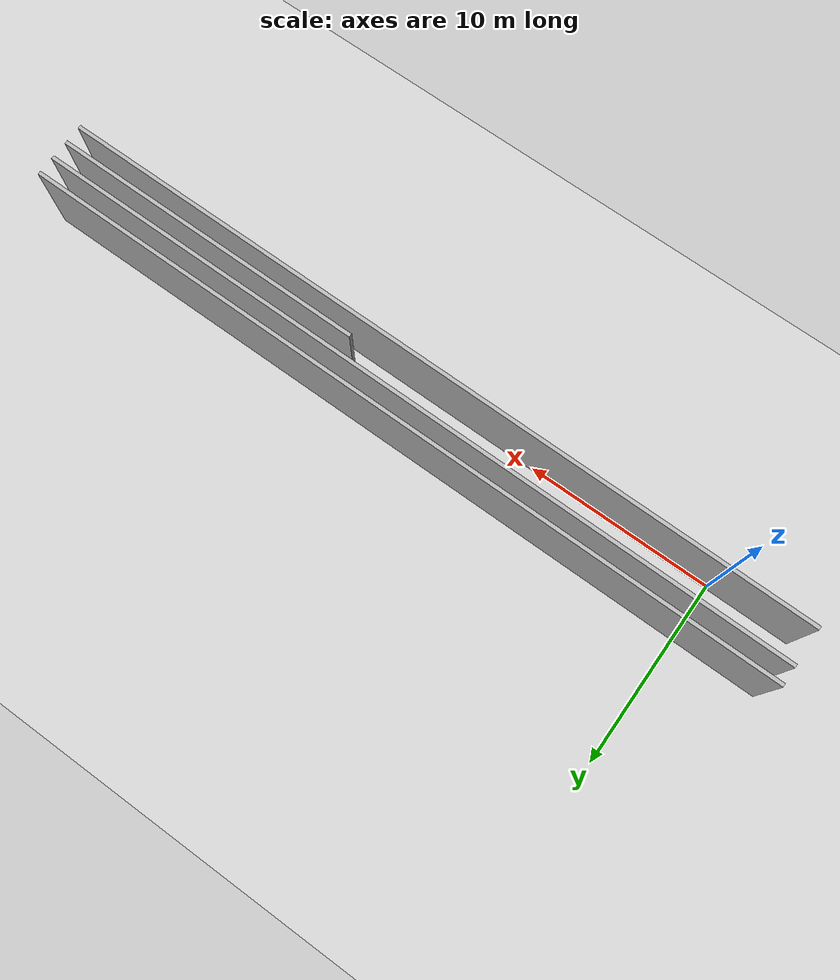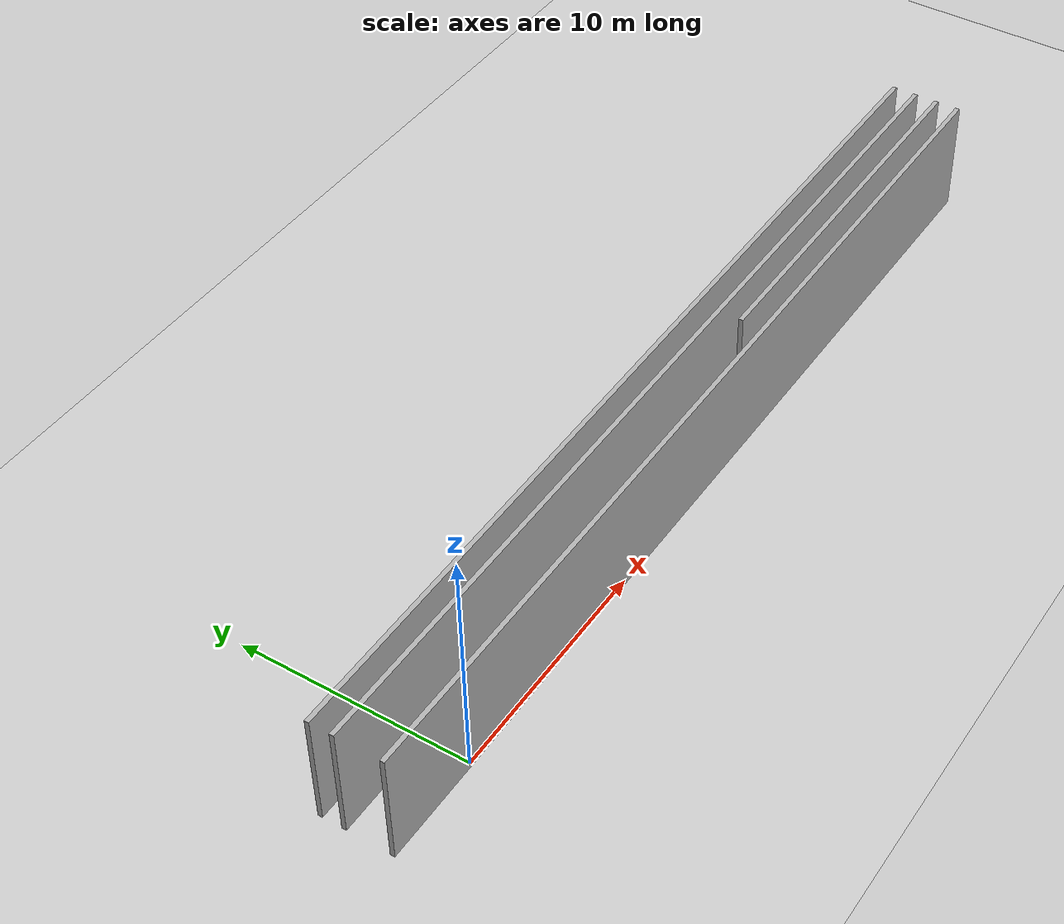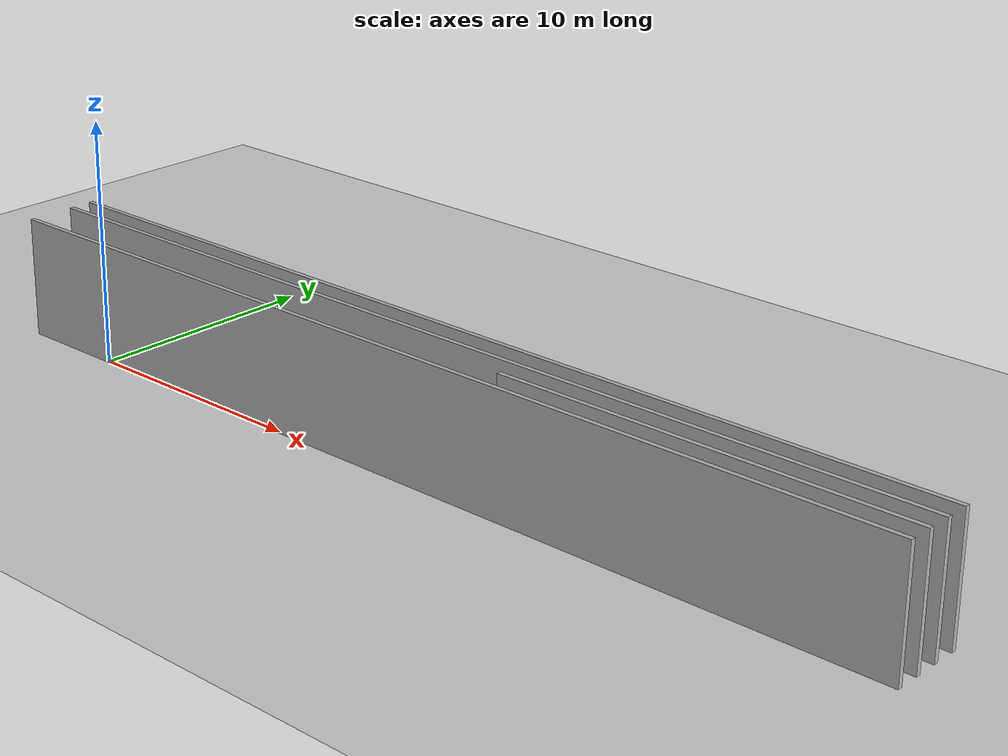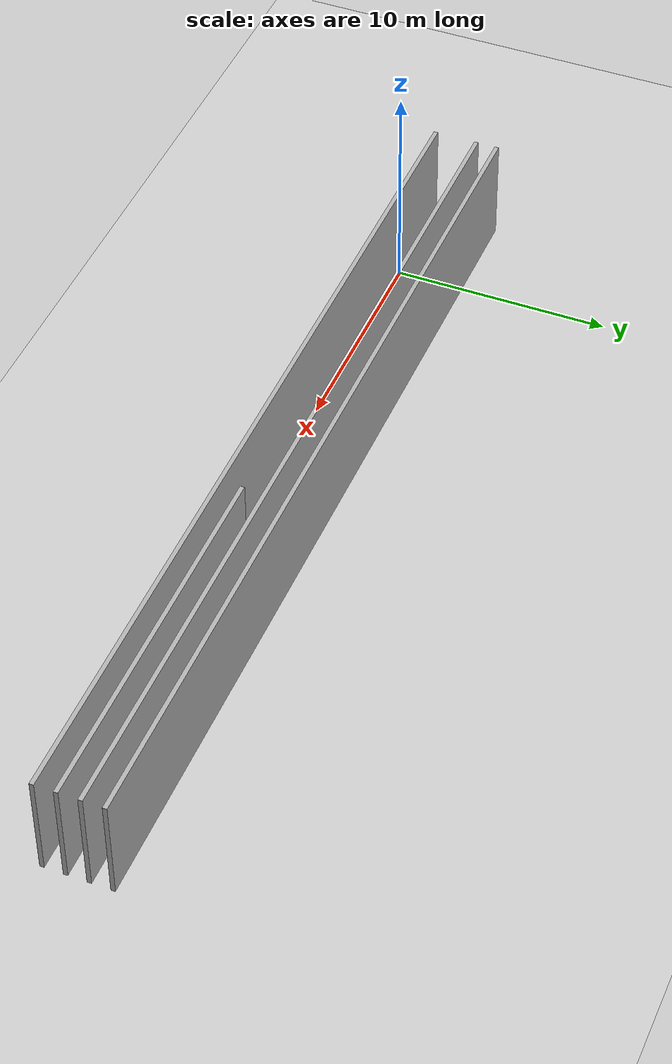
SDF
<?xml version="1.0" ?>
<sdf version="1.6">
  <world name="default">
    <!-- Required Gazebo system plugins -->
    <plugin filename="gz-sim-physics-system" name="gz::sim::systems::Physics"/>
    <plugin filename="gz-sim-user-commands-system" name="gz::sim::systems::UserCommands"/>
    <plugin filename="gz-sim-scene-broadcaster-system" name="gz::sim::systems::SceneBroadcaster"/>
    <plugin filename="gz-sim-sensors-system" name="gz::sim::systems::Sensors">
      <render_engine>ogre2</render_engine>
    </plugin>

    <light name="sun" type="directional">
      <pose>0 0 10 0 0 0</pose>
      <diffuse>0.8 0.8 0.8 1</diffuse>
      <direction>-0.5 0.1 -0.9</direction>
    </light>
    <model name="ground_plane">
      <static>true</static>
      <link name="link">
        <collision name="collision">
          <geometry>
            <plane>
              <normal>0 0 1</normal>
              <size>100 100</size>
            </plane>
          </geometry>
        </collision>
        <visual name="visual">
          <geometry>
            <plane>
              <normal>0 0 1</normal>
              <size>100 100</size>
            </plane>
          </geometry>
          <material>
            <ambient>0.8 0.8 0.8 1</ambient>
            <diffuse>0.8 0.8 0.8 1</diffuse>
            <specular>0.8 0.8 0.8 1</specular>
          </material>
        </visual>
      </link>
    </model>
    <model name="wall_0">
      <static>true</static>
      <pose>16.25 0.0 2.5 0 0 0.0</pose>
      <link name="link">
        <collision name="collision">
          <geometry>
            <box>
              <size>41.5 0.2 5.0</size>
            </box>
          </geometry>
        </collision>
        <visual name="visual">
          <geometry>
            <box>
              <size>41.5 0.2 5.0</size>
            </box>
          </geometry>
          <material>
            <ambient>0.5 0.5 0.5 1</ambient>
            <diffuse>0.7 0.7 0.7 1</diffuse>
          </material>
        </visual>
      </link>
    </model>
    <model name="wall_1">
      <static>true</static>
      <pose>28.5 1.0 2.5 0 0 0.0</pose>
      <link name="link">
        <collision name="collision">
          <geometry>
            <box>
              <size>17.0 0.2 5.0</size>
            </box>
          </geometry>
        </collision>
        <visual name="visual">
          <geometry>
            <box>
              <size>17.0 0.2 5.0</size>
            </box>
          </geometry>
          <material>
            <ambient>0.5 0.5 0.5 1</ambient>
            <diffuse>0.7 0.7 0.7 1</diffuse>
          </material>
        </visual>
      </link>
    </model>
    <model name="wall_2">
      <static>true</static>
      <pose>16.25 2.0 2.5 0 0 0.0</pose>
      <link name="link">
        <collision name="collision">
          <geometry>
            <box>
              <size>41.5 0.2 5.0</size>
            </box>
          </geometry>
        </collision>
        <visual name="visual">
          <geometry>
            <box>
              <size>41.5 0.2 5.0</size>
            </box>
          </geometry>
          <material>
            <ambient>0.5 0.5 0.5 1</ambient>
            <diffuse>0.7 0.7 0.7 1</diffuse>
          </material>
        </visual>
      </link>
    </model>
    <model name="wall_3">
      <static>true</static>
      <pose>16.25 3.0 2.5 0 0 0.0</pose>
      <link name="link">
        <collision name="collision">
          <geometry>
            <box>
              <size>41.5 0.2 5.0</size>
            </box>
          </geometry>
        </collision>
        <visual name="visual">
          <geometry>
            <box>
              <size>41.5 0.2 5.0</size>
            </box>
          </geometry>
          <material>
            <ambient>0.5 0.5 0.5 1</ambient>
            <diffuse>0.7 0.7 0.7 1</diffuse>
          </material>
        </visual>
      </link>
    </model>
  </world>
</sdf>
